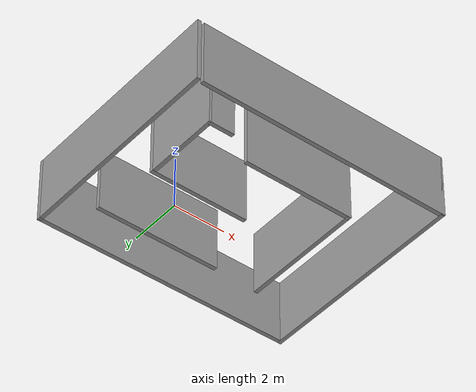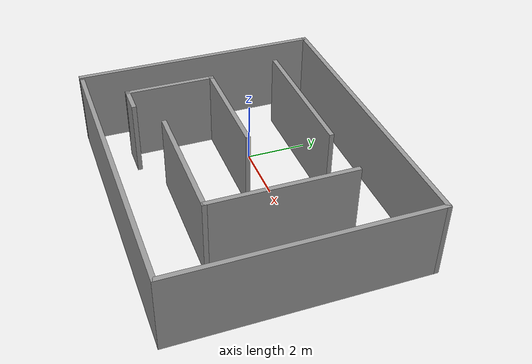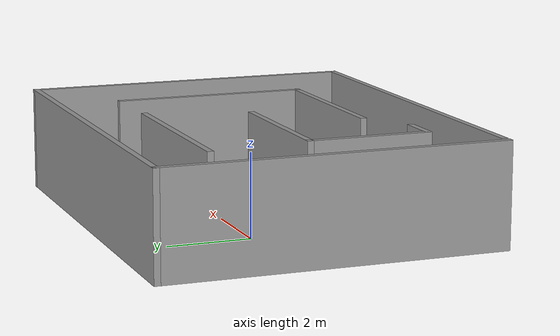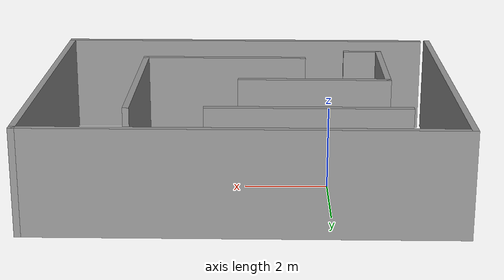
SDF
<?xml version='1.0'?>
<sdf version='1.6'>
  <model name='maze'>
    <pose frame=''>1.99072 -0.876777 0 0 -0 0</pose>
    <link name='Wall_10'>
      <collision name='Wall_10_Collision'>
        <geometry>
          <box>
            <size>4.75 0.15 2.5</size>
          </box>
        </geometry>
        <pose frame=''>0 0 1.25 0 -0 0</pose>
      </collision>
      <visual name='Wall_10_Visual'>
        <pose frame=''>0 0 1.25 0 -0 0</pose>
        <geometry>
          <box>
            <size>4.75 0.15 2.5</size>
          </box>
        </geometry>
        <material>
          <script>
            <uri>file://media/materials/scripts/gazebo.material</uri>
            <name>Gazebo/Grey</name>
          </script>
          <ambient>1 1 1 1</ambient>
        </material>
        <meta>
          <layer>0</layer>
        </meta>
      </visual>
      <pose frame=''>-1.45213 2.46846 0 0 -0 0</pose>
    </link>
    <link name='Wall_12'>
      <collision name='Wall_12_Collision'>
        <geometry>
          <box>
            <size>4.75 0.15 2.5</size>
          </box>
        </geometry>
        <pose frame=''>0 0 1.25 0 -0 0</pose>
      </collision>
      <visual name='Wall_12_Visual'>
        <pose frame=''>0 0 1.25 0 -0 0</pose>
        <geometry>
          <box>
            <size>4.75 0.15 2.5</size>
          </box>
        </geometry>
        <material>
          <script>
            <uri>file://media/materials/scripts/gazebo.material</uri>
            <name>Gazebo/Grey</name>
          </script>
          <ambient>1 1 1 1</ambient>
        </material>
        <meta>
          <layer>0</layer>
        </meta>
      </visual>
      <pose frame=''>2.67182 0.199052 0 0 -0 -1.5708</pose>
    </link>
    <link name='Wall_13'>
      <collision name='Wall_13_Collision'>
        <geometry>
          <box>
            <size>4.25 0.15 2.5</size>
          </box>
        </geometry>
        <pose frame=''>0 0 1.25 0 -0 0</pose>
      </collision>
      <visual name='Wall_13_Visual'>
        <pose frame=''>0 0 1.25 0 -0 0</pose>
        <geometry>
          <box>
            <size>4.25 0.15 2.5</size>
          </box>
        </geometry>
        <material>
          <script>
            <uri>file://media/materials/scripts/gazebo.material</uri>
            <name>Gazebo/Grey</name>
          </script>
          <ambient>1 1 1 1</ambient>
        </material>
        <meta>
          <layer>0</layer>
        </meta>
      </visual>
      <pose frame=''>0.621819 -2.10095 0 0 -0 3.14159</pose>
    </link>
    <link name='Wall_15'>
      <collision name='Wall_15_Collision'>
        <geometry>
          <box>
            <size>3.75 0.15 2.5</size>
          </box>
        </geometry>
        <pose frame=''>0 0 1.25 0 -0 0</pose>
      </collision>
      <visual name='Wall_15_Visual'>
        <pose frame=''>0 0 1.25 0 -0 0</pose>
        <geometry>
          <box>
            <size>3.75 0.15 2.5</size>
          </box>
        </geometry>
        <material>
          <script>
            <uri>file://media/materials/scripts/gazebo.material</uri>
            <name>Gazebo/Grey</name>
          </script>
          <ambient>1 1 1 1</ambient>
        </material>
        <meta>
          <layer>0</layer>
        </meta>
      </visual>
      <pose frame=''>-1.66717 0.051834 0 0 -0 3.14159</pose>
    </link>
    <link name='Wall_16'>
      <collision name='Wall_16_Collision'>
        <geometry>
          <box>
            <size>3 0.15 2.5</size>
          </box>
        </geometry>
        <pose frame=''>0 0 1.25 0 -0 0</pose>
      </collision>
      <visual name='Wall_16_Visual'>
        <pose frame=''>0 0 1.25 0 -0 0</pose>
        <geometry>
          <box>
            <size>3 0.15 2.5</size>
          </box>
        </geometry>
        <material>
          <script>
            <uri>file://media/materials/scripts/gazebo.material</uri>
            <name>Gazebo/Grey</name>
          </script>
          <ambient>1 1 1 1</ambient>
        </material>
        <meta>
          <layer>0</layer>
        </meta>
      </visual>
      <pose frame=''>-3.46717 -1.37317 0 0 -0 -1.5708</pose>
    </link>
    <link name='Wall_17'>
      <collision name='Wall_17_Collision'>
        <geometry>
          <box>
            <size>1 0.15 2.5</size>
          </box>
        </geometry>
        <pose frame=''>0 0 1.25 0 -0 0</pose>
      </collision>
      <visual name='Wall_17_Visual'>
        <pose frame=''>0 0 1.25 0 -0 0</pose>
        <geometry>
          <box>
            <size>1 0.15 2.5</size>
          </box>
        </geometry>
        <material>
          <script>
            <uri>file://media/materials/scripts/gazebo.material</uri>
            <name>Gazebo/Grey</name>
          </script>
          <ambient>1 1 1 1</ambient>
        </material>
        <meta>
          <layer>0</layer>
        </meta>
      </visual>
      <pose frame=''>-3.04217 -2.79817 0 0 -0 0</pose>
    </link>
    <link name='Wall_5'>
      <collision name='Wall_5_Collision'>
        <geometry>
          <box>
            <size>9.75 0.15 2.5</size>
          </box>
        </geometry>
        <pose frame=''>0 0 1.25 0 -0 0</pose>
      </collision>
      <visual name='Wall_5_Visual'>
        <pose frame=''>0 0 1.25 0 -0 0</pose>
        <geometry>
          <box>
            <size>9.75 0.15 2.5</size>
          </box>
        </geometry>
        <material>
          <script>
            <uri>file://media/materials/scripts/gazebo.material</uri>
            <name>Gazebo/Grey</name>
          </script>
          <ambient>1 1 1 1</ambient>
        </material>
        <meta>
          <layer>0</layer>
        </meta>
      </visual>
      <pose frame=''>0.125 -4.05 0 0 -0 0</pose>
    </link>
    <link name='Wall_6'>
      <collision name='Wall_6_Collision'>
        <geometry>
          <box>
            <size>8.25 0.15 2.5</size>
          </box>
        </geometry>
        <pose frame=''>0 0 1.25 0 -0 0</pose>
      </collision>
      <visual name='Wall_6_Visual'>
        <pose frame=''>0 0 1.25 0 -0 0</pose>
        <geometry>
          <box>
            <size>8.25 0.15 2.5</size>
          </box>
        </geometry>
        <material>
          <script>
            <uri>file://media/materials/scripts/gazebo.material</uri>
            <name>Gazebo/Grey</name>
          </script>
          <ambient>1 1 1 1</ambient>
        </material>
        <meta>
          <layer>0</layer>
        </meta>
      </visual>
      <pose frame=''>4.925 -0 0 0 -0 1.5708</pose>
    </link>
    <link name='Wall_7'>
      <collision name='Wall_7_Collision'>
        <geometry>
          <box>
            <size>10 0.15 2.5</size>
          </box>
        </geometry>
        <pose frame=''>0 0 1.25 0 -0 0</pose>
      </collision>
      <visual name='Wall_7_Visual'>
        <pose frame=''>0 0 1.25 0 -0 0</pose>
        <geometry>
          <box>
            <size>10 0.15 2.5</size>
          </box>
        </geometry>
        <material>
          <script>
            <uri>file://media/materials/scripts/gazebo.material</uri>
            <name>Gazebo/Grey</name>
          </script>
          <ambient>1 1 1 1</ambient>
        </material>
        <meta>
          <layer>0</layer>
        </meta>
      </visual>
      <pose frame=''>0 4.05 0 0 -0 3.14159</pose>
    </link>
    <link name='Wall_8'>
      <collision name='Wall_8_Collision'>
        <geometry>
          <box>
            <size>8.25 0.15 2.5</size>
          </box>
        </geometry>
        <pose frame=''>0 0 1.25 0 -0 0</pose>
      </collision>
      <visual name='Wall_8_Visual'>
        <pose frame=''>0 0 1.25 0 -0 0</pose>
        <geometry>
          <box>
            <size>8.25 0.15 2.5</size>
          </box>
        </geometry>
        <material>
          <script>
            <uri>file://media/materials/scripts/gazebo.material</uri>
            <name>Gazebo/Grey</name>
          </script>
          <ambient>1 1 1 1</ambient>
        </material>
        <meta>
          <layer>0</layer>
        </meta>
      </visual>
      <pose frame=''>-4.925 -0 0 0 -0 -1.5708</pose>
    </link>
    <static>1</static>
  </model>
</sdf>
